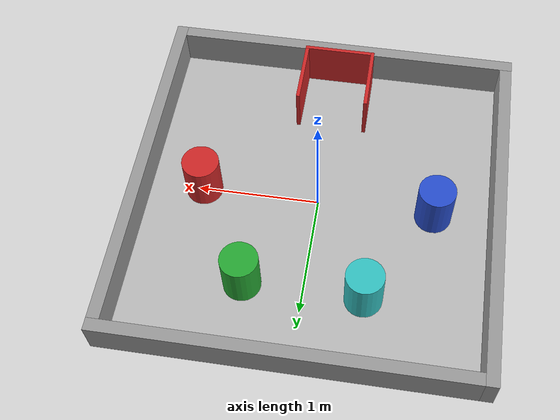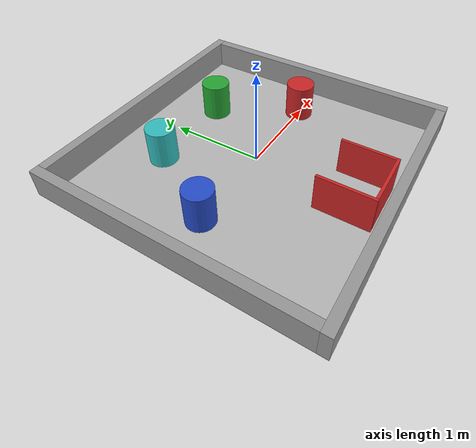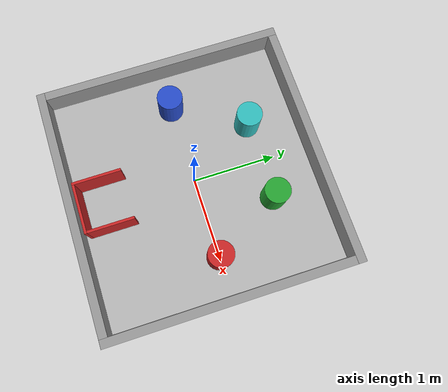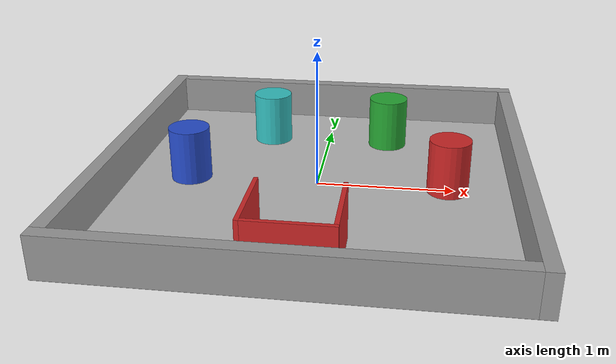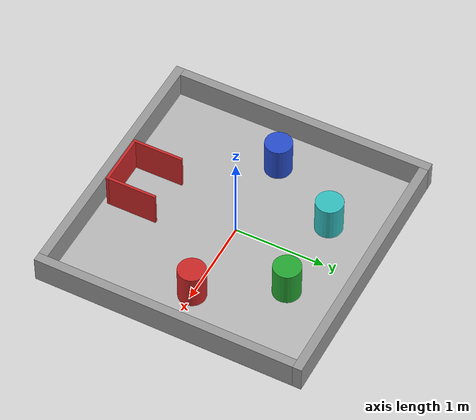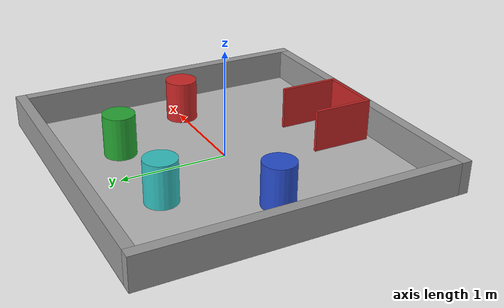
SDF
<sdf version="1.6">
 <world name="default">
  <light name="sun" type="directional">
   <pose>0 0 10 0 -0 0</pose>
   <diffuse>0.8 0.8 0.8 1</diffuse>
   <specular>0.2 0.2 0.2 1</specular>
   <attenuation>
    <range>1000</range>
    <constant>0.9</constant>
    <linear>0.01</linear>
    <quadratic>0.001</quadratic>
   </attenuation>
   <direction>-0.5 0.1 -0.9</direction>
  </light>
  <gravity>0 0 -9.8</gravity>
  <magnetic_field>6e-06 2.3e-05 -4.2e-05</magnetic_field>
  <atmosphere type="adiabatic"/>
  <physics name="default_physics" default="0" type="ode">
   <max_step_size>0.001</max_step_size>
   <real_time_factor>1</real_time_factor>
   <real_time_update_rate>1000</real_time_update_rate>
  </physics>
  <scene><ambient>0.4 0.4 0.4 1</ambient><background>0.7 0.7 0.7 1</background><shadows>1</shadows></scene>
  <spherical_coordinates>
   <surface_model>EARTH_WGS84</surface_model>
   <latitude_deg>0</latitude_deg>
   <longitude_deg>0</longitude_deg>
   <elevation>0</elevation>
   <heading_deg>0</heading_deg>
  </spherical_coordinates>
  <include><uri>model://detection</uri></include>
  <include><uri>model://small_arena_walls</uri></include>
 </world>
</sdf>

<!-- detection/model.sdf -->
<sdf version="1.4">
<model name="detection">
  <static>true</static>
    <link name="floor">
      <collision name="collision">
        <geometry>
          <plane>
            <normal>0 0 1</normal>
            <size>3.0 3.0</size>
          </plane>
        </geometry>
        <surface>
          <friction>
            <ode>
              <mu>100</mu>
              <mu2>50</mu2>
            </ode>
          </friction>
        </surface>
      </collision>
      <visual name="visual">
        <cast_shadows>false</cast_shadows>
        <geometry>
          <plane>
            <normal>0 0 1</normal>
            <size>3.0 3.0</size>
          </plane>
        </geometry>
        <material>
          <script>
            <uri>model://detection/materials/scripts</uri>
            <uri>model://detection/materials/textures</uri>
            <name>DetectionFloor/Image</name>
          </script>
        </material>
      </visual>
    </link>
    <link name='BCN_LL'>
      <pose frame=''>-0.95 0 0.2 0 0 0</pose>
      <collision name='coll'>
        <geometry>
          <cylinder>
            <radius>0.15</radius>
            <length>0.4</length>
          </cylinder>
        </geometry>
        <max_contacts>10</max_contacts>
      </collision>
      <visual name='vis'>
        <geometry>
          <cylinder>
            <radius>0.15</radius>
            <length>0.4</length>
          </cylinder>
        </geometry>
        <material>
          <script>
            <uri>file://media/materials/scripts/gazebo.material</uri>
            <name>Gazebo/Blue</name>
          </script>
        </material>
      </visual>
    </link>
    <link name='BCN_L'>
      <pose frame=''>-0.475 0.82273 0.2 0 0 0</pose>
      <collision name='coll'>
        <geometry>
          <cylinder>
            <radius>0.15</radius>
            <length>0.4</length>
          </cylinder>
        </geometry>
        <max_contacts>10</max_contacts>
      </collision>
      <visual name='vis'>
        <geometry>
          <cylinder>
            <radius>0.15</radius>
            <length>0.4</length>
          </cylinder>
        </geometry>
        <material>
          <script>
            <uri>file://media/materials/scripts/gazebo.material</uri>
            <name>Gazebo/Turquoise</name>
          </script>
        </material>
      </visual>
    </link>
    <link name='BCN_R'>
      <pose frame=''>0.475 0.82273 0.2 0 0 0</pose>
      <collision name='coll'>
        <geometry>
          <cylinder>
            <radius>0.15</radius>
            <length>0.4</length>
          </cylinder>
        </geometry>
        <max_contacts>10</max_contacts>
      </collision>
      <visual name='vis'>
        <geometry>
          <cylinder>
            <radius>0.15</radius>
            <length>0.4</length>
          </cylinder>
        </geometry>
        <material>
          <script>
            <uri>file://media/materials/scripts/gazebo.material</uri>
            <name>Gazebo/Green</name>
          </script>
        </material>
      </visual>
    </link>
    <link name='BCN_RR'>
      <pose frame=''>0.95 0 0.2 0 0 0</pose>
      <collision name='coll'>
        <geometry>
          <cylinder>
            <radius>0.15</radius>
            <length>0.4</length>
          </cylinder>
        </geometry>
        <max_contacts>10</max_contacts>
      </collision>
      <visual name='vis'>
        <geometry>
          <cylinder>
            <radius>0.15</radius>
            <length>0.4</length>
          </cylinder>
        </geometry>
        <material>
          <script>
            <uri>file://media/materials/scripts/gazebo.material</uri>
            <name>Gazebo/Red</name>
          </script>
        </material>
      </visual>
    </link>

    <link name='start_zone'>
      <pose frame=''>0 -1.06114 0.2 0 0 1.571</pose>
      <collision name='Right_Wall_Collision'>
        <geometry>
          <box>
            <size>0.57 0.03 0.4</size>
          </box>
        </geometry>
        <pose frame=''>0 0.2850 0 0 0 0</pose>
      </collision>
      <visual name='Right_Wall_Visual'>
        <pose frame=''>0 0.2850 0 0 0 0</pose>
        <geometry>
          <box>
            <size>0.57 0.03 0.4</size>
          </box>
        </geometry>
        <material>
          <script>
            <uri>file://media/materials/scripts/gazebo.material</uri>
            <name>Gazebo/Red</name>
          </script>
        </material>
      </visual>
      <collision name='Back_Wall_Collision'>
        <geometry>
          <box>
            <size>0.57 0.03 0.4</size>
          </box>
        </geometry>
        <pose frame=''>-0.27 -0.015 0 0 0 1.571</pose>
      </collision>
      <visual name='Back_Wall_Visual'>
        <pose frame=''>-0.27 -0.015 0 0 0 1.571</pose>
        <geometry>
          <box>
            <size>0.57 0.03 0.4</size>
          </box>
        </geometry>
        <material>
          <script>
            <uri>file://media/materials/scripts/gazebo.material</uri>
            <name>Gazebo/Red</name>
          </script>
        </material>
      </visual>
      <collision name='Left_Wall_Collision'>
        <geometry>
          <box>
            <size>0.54 0.03 0.4</size>
          </box>
        </geometry>
        <pose frame=''>0.015 -0.285 0 0 0 0</pose>
      </collision>
      <visual name='Left_Wall_Visual'>
        <pose frame=''>0.015 -0.285 0 0 0 0</pose>
        <geometry>
          <box>
            <size>0.54 0.03 0.4</size>
          </box>
        </geometry>
        <material>
          <script>
            <uri>file://media/materials/scripts/gazebo.material</uri>
            <name>Gazebo/Red</name>
          </script>
        </material>
      </visual>
    </link>
  </model>
</sdf>

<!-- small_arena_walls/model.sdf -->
<sdf version='1.6'>
  <model name='small_arena_walls'>
    <pose frame=''>0 0 0.15 0 0 0</pose>
    <link name='Right_Wall'>
      <collision name='Right_Wall_Collision'>
        <geometry>
          <box>
            <size>2.90 0.10 0.3</size>
          </box>
        </geometry>
        <pose frame=''>0 0 0 0 0 0</pose>
      </collision>
      <visual name='Right_Wall_Visual'>
        <pose frame=''>0 0 0 0 0 0</pose>
        <geometry>
          <box>
            <size>2.90 0.10 0.3</size>
          </box>
        </geometry>
        <material>
          <script>
            <uri>file://media/materials/scripts/gazebo.material</uri>
            <name>Gazebo/Grey</name>
          </script>
          <ambient>1 1 1 1</ambient>
        </material>
      </visual>
      <pose frame=''>0.05 1.45 0 0 0 0</pose>
    </link>
    <link name='Back_Wall'>
      <collision name='Back_Wall_Collision'>
        <geometry>
          <box>
            <size>2.90 0.10 0.3</size>
          </box>
        </geometry>
        <pose frame=''>0 0 0 0 0 0</pose>
      </collision>
      <visual name='Back_Wall_Visual'>
        <pose frame=''>0 0 0 0 0 0</pose>
        <geometry>
          <box>
            <size>2.90 0.10 0.3</size>
          </box>
        </geometry>
        <material>
          <script>
            <uri>file://media/materials/scripts/gazebo.material</uri>
            <name>Gazebo/Grey</name>
          </script>
          <ambient>1 1 1 1</ambient>
        </material>
      </visual>
      <pose frame=''>-1.45 0.05 0 0 0 1.5708</pose>
    </link>
    <link name='Left_Wall'>
      <collision name='Left_Wall_Collision'>
        <geometry>
          <box>
            <size>2.90 0.10 0.3</size>
          </box>
        </geometry>
        <pose frame=''>0 0 0 0 0 0</pose>
      </collision>
      <visual name='Left_Wall_Visual'>
        <pose frame=''>0 0 0 0 0 0</pose>
        <geometry>
          <box>
            <size>2.90 0.10 0.3</size>
          </box>
        </geometry>
        <material>
          <script>
            <uri>file://media/materials/scripts/gazebo.material</uri>
            <name>Gazebo/Grey</name>
          </script>
          <ambient>1 1 1 1</ambient>
        </material>
      </visual>
      <pose frame=''>-0.05 -1.45 0 0 0 0</pose>
    </link>
    <link name='Front_Wall'>
      <collision name='Front_Wall_Collision'>
        <geometry>
          <box>
            <size>2.90 0.10 0.3</size>
          </box>
        </geometry>
        <pose frame=''>0 0 0 0 0 0</pose>
      </collision>
      <visual name='Front_Wall_Visual'>
        <pose frame=''>0 0 0 0 0 0</pose>
        <geometry>
          <box>
            <size>2.90 0.10 0.3</size>
          </box>
        </geometry>
        <material>
          <script>
            <uri>file://media/materials/scripts/gazebo.material</uri>
            <name>Gazebo/Grey</name>
          </script>
          <ambient>1 1 1 1</ambient>
        </material>
      </visual>
      <pose frame=''>1.45 -0.05 0 0 0 1.5708</pose>
    </link>
    <static>1</static>
  </model>
</sdf>
